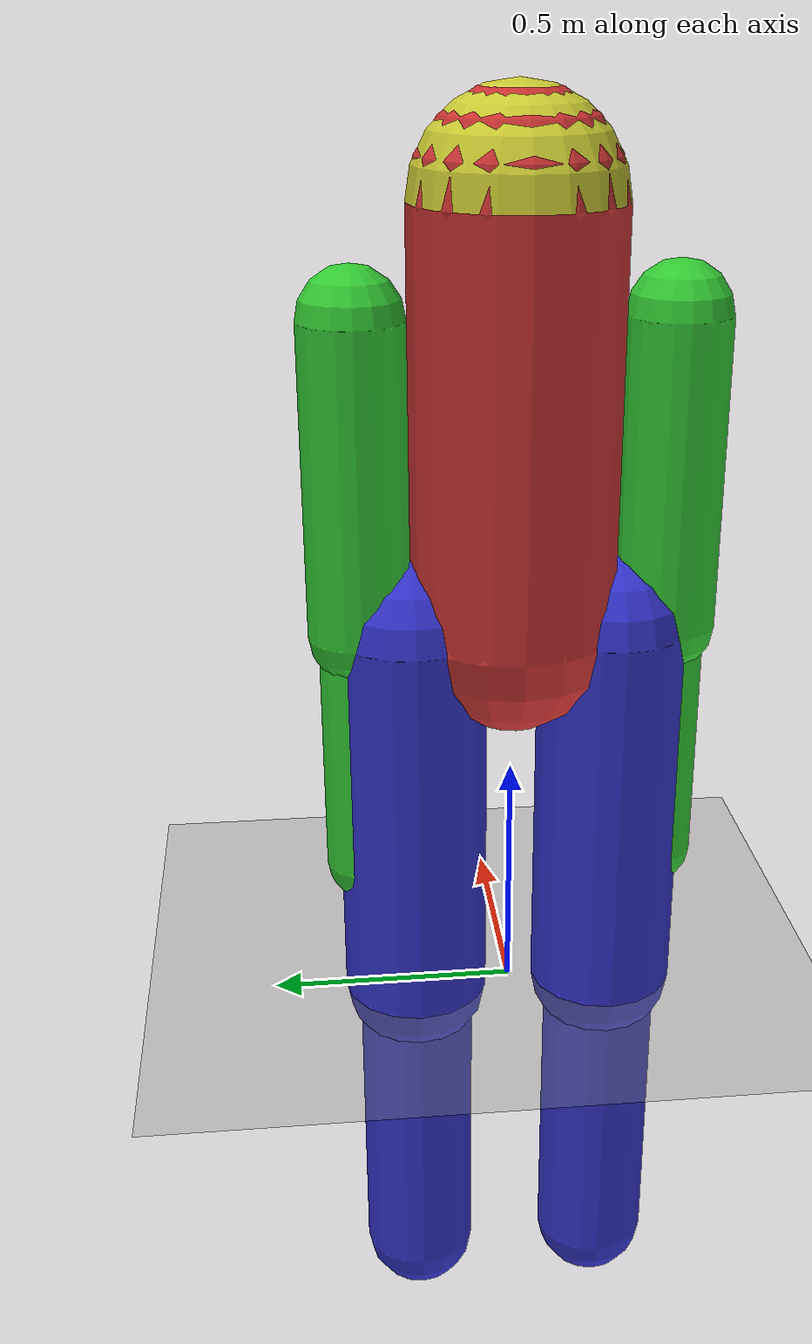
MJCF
<mujoco model="simple humanoid">
  <compiler angle="radian" inertiafromgeom="true"/>
  <option timestep="0.005" gravity="0 0 -9.81"/>

  <!-- 视觉材质：区分不同身体部位 -->
  <asset>
    <material name="torso_mat" rgba=".8 .2 .2 1"/>   <!-- 躯干-红色 -->
    <material name="arm_mat" rgba=".2 .8 .2 1"/>     <!-- 手臂-绿色 -->
    <material name="leg_mat" rgba=".2 .2 .8 1"/>      <!-- 腿部-蓝色 -->
    <material name="head_mat" rgba=".8 .8 .2 1"/>     <!-- 头部-黄色 -->
  </asset>

  <!-- 世界坐标系：添加地面 -->
  <worldbody>
    <light name="light" pos="0 5 10" dir="0 0 -1"/>
    <geom name="floor" type="plane" size="20 20 0.1" rgba=".5 .5 .5 1"/>

    <!-- 1. 根节点：躯干 -->
    <body name="torso" pos="0 0 1.2">
      <inertial pos="0 0 0" mass="20" diaginertia="1 1 1"/>
      <geom name="torso_geom" type="capsule" size="0.2 0.4" fromto="0 0 -0.4 0 0 0.4" material="torso_mat"/>

      <!-- 2. 头部 -->
      <body name="head" pos="0 0 0.4">
        <inertial pos="0 0 0" mass="5" diaginertia="0.5 0.5 0.5"/>
        <geom name="head_geom" type="sphere" size="0.2" material="head_mat"/>
      </body>

      <!-- 3. 左臂：肩关节(球关节) → 上臂 → 肘关节(铰链关节) → 前臂 -->
      <body name="left_shoulder" pos="0 -0.3 0.2">
        <joint name="left_shoulder_joint" type="ball" damping="0.1"/>
        <body name="left_upper_arm" pos="0 0 0">
          <inertial pos="0 0 -0.2" mass="2" diaginertia="0.2 0.2 0.2"/>
          <geom name="left_upper_arm_geom" type="capsule" size="0.1 0.3" fromto="0 0 0 0 0 -0.6" material="arm_mat"/>
          <body name="left_elbow" pos="0 0 -0.6">
            <joint name="left_elbow_joint" type="hinge" axis="1 0 0" damping="0.1" range="-1.57 0"/>
            <body name="left_lower_arm" pos="0 0 0">
              <inertial pos="0 0 -0.2" mass="1" diaginertia="0.1 0.1 0.1"/>
              <geom name="left_lower_arm_geom" type="capsule" size="0.08 0.25" fromto="0 0 0 0 0 -0.5" material="arm_mat"/>
            </body>
          </body>
        </body>
      </body>

      <!-- 4. 右臂：结构与左臂对称 -->
      <body name="right_shoulder" pos="0 0.3 0.2">
        <joint name="right_shoulder_joint" type="ball" damping="0.1"/>
        <body name="right_upper_arm" pos="0 0 0">
          <inertial pos="0 0 -0.2" mass="2" diaginertia="0.2 0.2 0.2"/>
          <geom name="right_upper_arm_geom" type="capsule" size="0.1 0.3" fromto="0 0 0 0 0 -0.6" material="arm_mat"/>
          <body name="right_elbow" pos="0 0 -0.6">
            <joint name="right_elbow_joint" type="hinge" axis="1 0 0" damping="0.1" range="-1.57 0"/>
            <body name="right_lower_arm" pos="0 0 0">
              <inertial pos="0 0 -0.2" mass="1" diaginertia="0.1 0.1 0.1"/>
              <geom name="right_lower_arm_geom" type="capsule" size="0.08 0.25" fromto="0 0 0 0 0 -0.5" material="arm_mat"/>
            </body>
          </body>
        </body>
      </body>

      <!-- 5. 左腿：髋关节(球关节) → 大腿 → 膝关节(铰链关节) → 小腿 -->
      <body name="left_hip" pos="0 -0.2 -0.4">
        <joint name="left_hip_joint" type="ball" damping="0.1"/>
        <body name="left_thigh" pos="0 0 0">
          <inertial pos="0 0 -0.3" mass="4" diaginertia="0.3 0.3 0.3"/>
          <geom name="left_thigh_geom" type="capsule" size="0.15 0.4" fromto="0 0 0 0 0 -0.8" material="leg_mat"/>
          <body name="left_knee" pos="0 0 -0.8">
            <joint name="left_knee_joint" type="hinge" axis="1 0 0" damping="0.1" range="0 1.57"/>
            <body name="left_calf" pos="0 0 0">
              <inertial pos="0 0 -0.25" mass="3" diaginertia="0.25 0.25 0.25"/>
              <geom name="left_calf_geom" type="capsule" size="0.12 0.35" fromto="0 0 0 0 0 -0.7" material="leg_mat"/>
            </body>
          </body>
        </body>
      </body>

      <!-- 6. 右腿：结构与左腿对称 -->
      <body name="right_hip" pos="0 0.2 -0.4">
        <joint name="right_hip_joint" type="ball" damping="0.1"/>
        <body name="right_thigh" pos="0 0 0">
          <inertial pos="0 0 -0.3" mass="4" diaginertia="0.3 0.3 0.3"/>
          <geom name="right_thigh_geom" type="capsule" size="0.15 0.4" fromto="0 0 0 0 0 -0.8" material="leg_mat"/>
          <body name="right_knee" pos="0 0 -0.8">
            <joint name="right_knee_joint" type="hinge" axis="1 0 0" damping="0.1" range="0 1.57"/>
            <body name="right_calf" pos="0 0 0">
              <inertial pos="0 0 -0.25" mass="3" diaginertia="0.25 0.25 0.25"/>
              <geom name="right_calf_geom" type="capsule" size="0.12 0.35" fromto="0 0 0 0 0 -0.7" material="leg_mat"/>
            </body>
          </body>
        </body>
      </body>
    </body>
  </worldbody>

  <!-- 控制器：为关节添加电机(可选，用于控制运动) -->
  <actuator>
    <!-- 手臂关节电机 -->
    <motor name="left_shoulder_motor" joint="left_shoulder_joint" ctrlrange="-1 1" gear="100"/>
    <motor name="left_elbow_motor" joint="left_elbow_joint" ctrlrange="-1 1" gear="100"/>
    <motor name="right_shoulder_motor" joint="right_shoulder_joint" ctrlrange="-1 1" gear="100"/>
    <motor name="right_elbow_motor" joint="right_elbow_joint" ctrlrange="-1 1" gear="100"/>
    <!-- 腿部关节电机 -->
    <motor name="left_hip_motor" joint="left_hip_joint" ctrlrange="-1 1" gear="200"/>
    <motor name="left_knee_motor" joint="left_knee_joint" ctrlrange="-1 1" gear="200"/>
    <motor name="right_hip_motor" joint="right_hip_joint" ctrlrange="-1 1" gear="200"/>
    <motor name="right_knee_motor" joint="right_knee_joint" ctrlrange="-1 1" gear="200"/>
  </actuator>
</mujoco>
